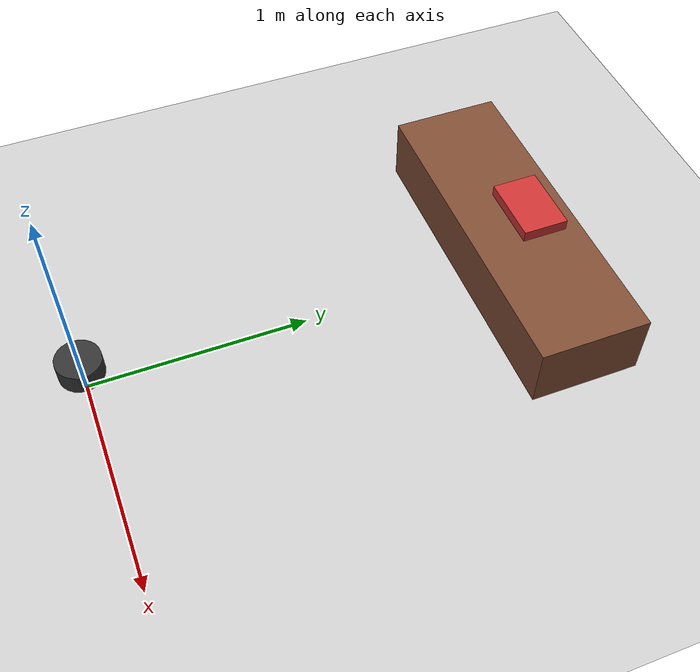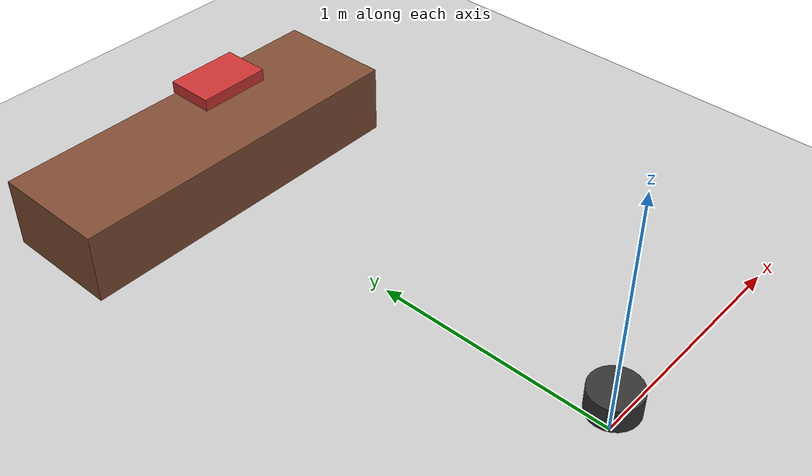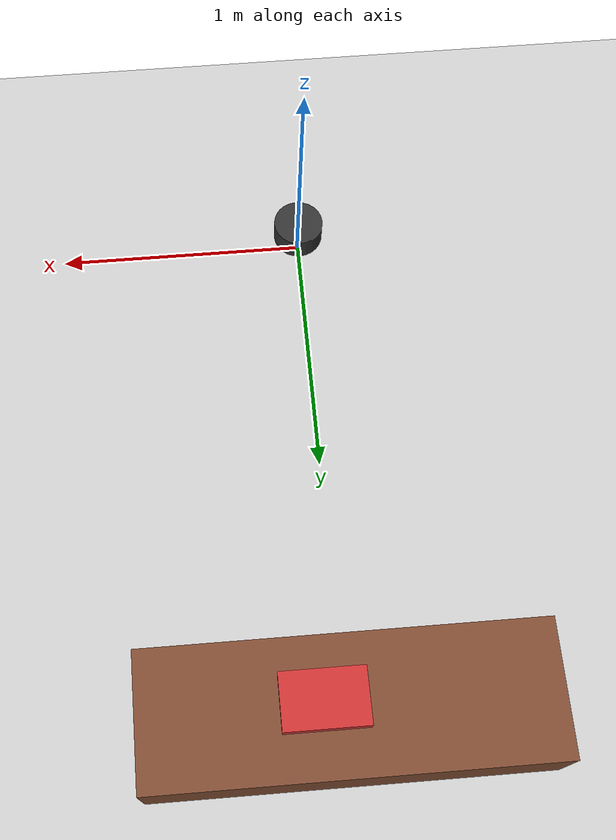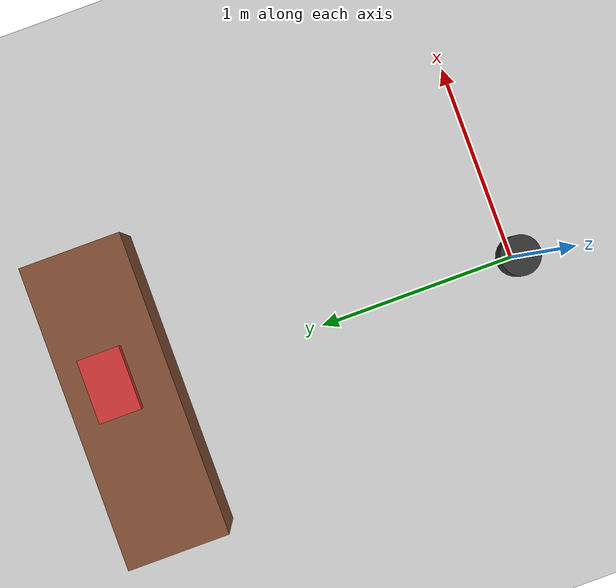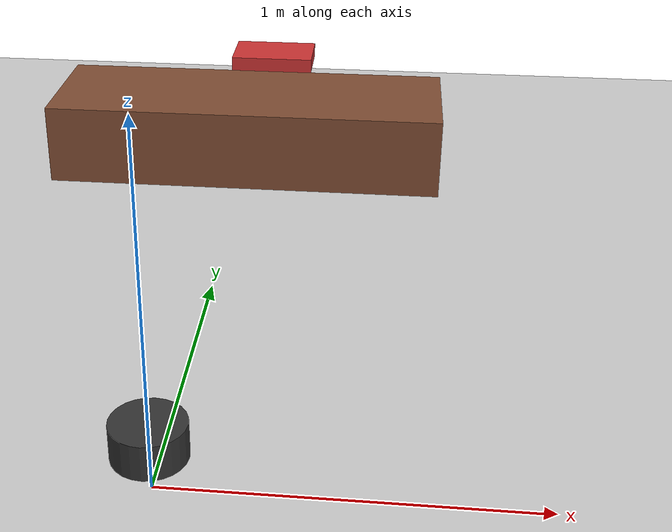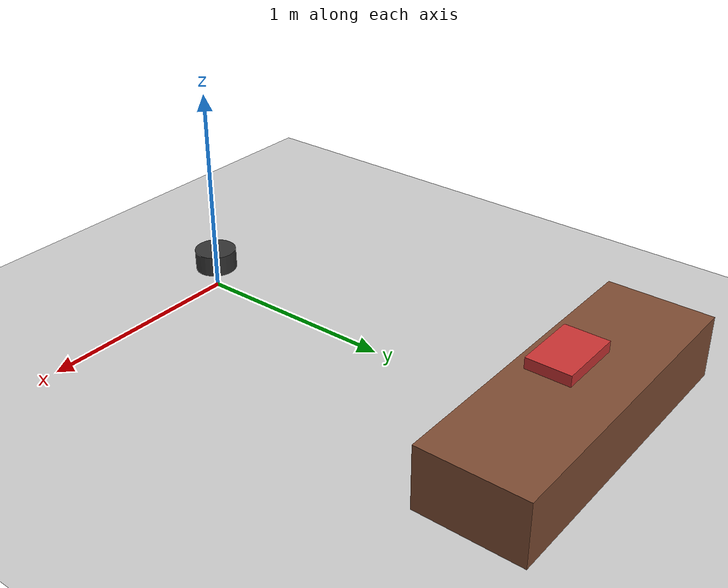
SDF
<?xml version="1.0"?>
<sdf version="1.6">
  <world name="custom_maze">
    <include>
      <uri>model://ground_plane</uri>
    </include>

    <include>
      <uri>model://sun</uri>
    </include>

    <!-- Bench 1 with Book -->
    <include>
      <uri>model://bench</uri>
      <pose>0 2 0.15 0 0 0</pose>
    </include>
    <include>
      <uri>model://object_book</uri>
      <pose>0.1 2 0.45 0 0 0</pose>
    </include>

    <!-- TurtleBot3 -->
    <include>
      <uri>model://turtlebot3_burger</uri>
      <pose>0 0 0.15 0 0 0</pose>
    </include>
  </world>
</sdf>

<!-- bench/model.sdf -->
<sdf version="1.6">
  <model name="bench">
    <static>true</static>
    <link name="bench_link">
      <visual name="bench_visual">
        <geometry>
          <box>
            <size>1.5 0.5 0.3</size>
          </box>
        </geometry>
        <material>
          <ambient>0.5 0.3 0.2 1</ambient>
        </material>
      </visual>
    </link>
  </model>
</sdf>

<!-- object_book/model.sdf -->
<sdf version="1.6">
  <model name="object_book">
    <static>true</static>
    <link name="book_link">
      <visual name="book_visual">
        <geometry>
          <box>
            <size>0.3 0.2 0.05</size>
          </box>
        </geometry>
        <material>
          <ambient>0.8 0.2 0.2 1</ambient>
        </material>
      </visual>
    </link>
  </model>
</sdf>

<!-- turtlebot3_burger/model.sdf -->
<sdf version="1.6">
  <model name="turtlebot3_burger">
    <static>false</static>

    <link name="base_link">
      <!-- Robot Body -->
      <visual name="body_visual">
        <geometry>
          <cylinder>
            <radius>0.1</radius>
            <length>0.1</length>
          </cylinder>
        </geometry>
        <material>
          <ambient>0.2 0.2 0.2 1</ambient>
        </material>
      </visual>

      <!-- Wheels -->
      <joint name="wheel_left_joint" type="continuous">
        <parent>base_link</parent>
        <child>wheel_left</child>
        <axis>
          <xyz>0 1 0</xyz>
          <limit>
            <velocity>10</velocity>
            <effort>10</effort>
          </limit>
        </axis>
      </joint>

      <joint name="wheel_right_joint" type="continuous">
        <parent>base_link</parent>
        <child>wheel_right</child>
        <axis>
          <xyz>0 1 0</xyz>
          <limit>
            <velocity>10</velocity>
            <effort>10</effort>
          </limit>
        </axis>
      </joint>
    </link>

    <!-- Camera Sensor -->
    <link name="camera_link">
      <sensor name="camera" type="camera">
        <always_on>1</always_on>
        <update_rate>30</update_rate>
        <visualize>true</visualize>
        <camera>
          <horizontal_fov>1.3962634</horizontal_fov>
          <image>
            <width>640</width>
            <height>480</height>
            <format>R8G8B8</format>
          </image>
          <clip>
            <near>0.1</near>
            <far>100</far>
          </clip>
        </camera>
        <plugin name="camera_controller" filename="libgazebo_ros_camera.so">
          <ros>
            <namespace>/camera</namespace>
            <remapping>image_raw:=/camera/image_raw</remapping>
          </ros>
        </plugin>
      </sensor>
    </link>

  </model>
</sdf>
